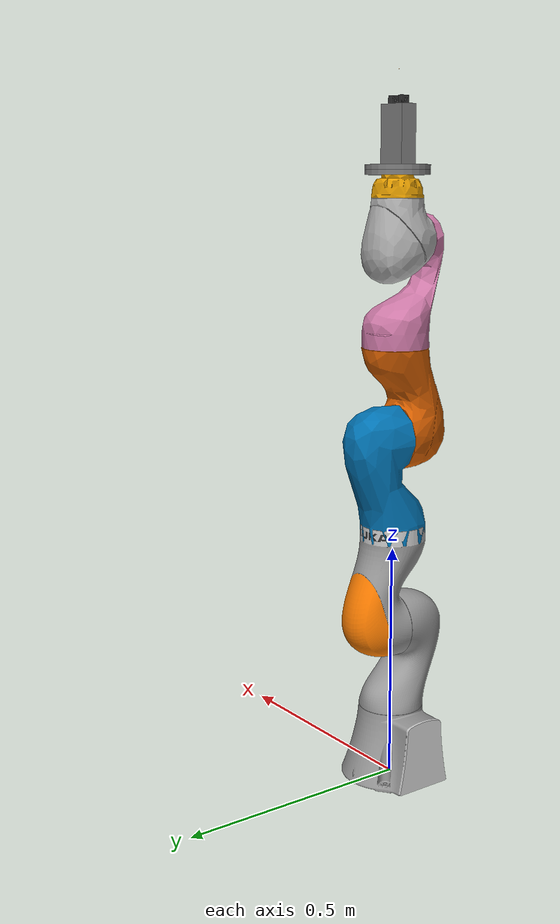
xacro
<?xml version="1.0"?>

<!-- top level -->
<robot name="iiwa7" xmlns:xacro="http://www.ros.org/wiki/xacro">
    <xacro:include filename="$(find papouch_description)/urdf/_materials.urdf.xacro" />
    <xacro:include filename="$(find papouch_description)/urdf/schunk_gripper.xacro" />

    <!-- include the lbr iiwa description -->
    <xacro:include filename="$(find lbr_description)/urdf/iiwa7/iiwa7.xacro" />

    <!-- include the definition of tools-->
    <xacro:include filename="$(find agimus_description)/urdf/flange.xacro" />
    <xacro:include filename="$(find agimus_description)/urdf/knife.xacro" />
    <xacro:include filename="$(find papouch_description)/urdf/schunk_gripper.xacro" />

    <!-- connect tools to the end-effector -->
    <xacro:tool_flange parent="$(arg robot_name)_link_ee" name="$(arg robot_name)_flange"/>
    <xacro:tool_flange parent="$(arg robot_name)_flange" name="$(arg robot_name)_flange_g"/>
    <xacro:schunk_gripper parent="$(arg robot_name)_flange_g" name="$(arg robot_name)_gripper"/>

    <!-- tcp - added 5cm finger length -->
    <link name="$(arg robot_name)_link_tool">
        <visual>
            <origin xyz="0 0 0" rpy="0 0 0"/>
            <geometry>
	            <sphere radius="0.001"/>
            </geometry>
            <material name="dummy"/>
        </visual>
    </link>

    <joint name="$(arg robot_name)_joint_tool" type="fixed">
        <parent link="$(arg robot_name)_gripper" />
        <child link="$(arg robot_name)_link_tool" />
        <origin xyz="0 0 0.05" rpy="0 0 0" />
    </joint>
</robot>

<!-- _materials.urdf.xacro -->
<robot xmlns:xacro="http://ros.org/wiki/xacro">
    <xacro:property name="papouch_materials_defined" default="false"/>
    <xacro:unless value="${papouch_materials_defined}">
        <xacro:property name="papouch_materials_defined" value="true"/>

        <material name="papouch:dummy">
            <color rgba="1.0 0.5 0.0 1"/>
        </material>

        <material name="papouch:steel">
            <color rgba="0.5 0.5 0.5 1"/>
        </material>

        <material name="papouch:black">
            <color rgba="0.2 0.2 0.2 1"/>
        </material>

        <material name="papouch:gray">
            <color rgba="0.7 0.7 0.7 1"/>
        </material>

        <material name="papouch:orange">
            <color rgba="1.0 0.3 0.0 1"/>
        </material>

        <material name="papouch:yellow">
            <color rgba="1.0 0.7 0.0 1"/>
        </material>

    </xacro:unless>
</robot>

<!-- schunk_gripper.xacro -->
<robot name="schunk_gripper" xmlns:xacro="http://ros.org/wiki/xacro">
    <xacro:include
            filename="$(find papouch_description)/urdf/_materials.urdf.xacro"/>

    <xacro:macro name="schunk_gripper" params="parent name:=gripper">

        <joint name="${name}_base_joint" type="fixed">
            <origin xyz="0 0 0" rpy="0 0 0"/>
            <parent link="${parent}"/>
            <child link="${name}_base"/>
        </joint>

        <link name="${name}_base">
            <visual>
                <origin xyz="0 0 0" rpy="0 0 0"/>
                <geometry>
                    <mesh filename="package://papouch_description/meshes/schunk_gripper_body.stl"
                          scale="0.001 0.001 0.001"/>
                </geometry>
                <material name="papouch:steel"/>
            </visual>
        </link>

        <link name="${name}_finger_p">
            <inertial>
                <origin rpy="0 0 0" xyz="0.0 0.0 0.0" />
                <mass value="0.02" />
                <inertia ixx="0.0003" ixy="0.0" ixz="0.0" iyy="0.0003" iyz="-0.00005" izz="0.00009" />
            </inertial>

            <visual>
                <origin xyz="0 0 0" rpy="0 0 0"/>
                <geometry>
                    <mesh filename="package://papouch_description/meshes/schunk_gripper_finger.stl"
                          scale="0.001 0.001 0.001"/>
                </geometry>
                <material name="papouch:black"/>
            </visual>
        </link>

        <link name="${name}_finger_m">
            <inertial>
                <origin rpy="0 0 0" xyz="0 0 0" />
                <mass value="0.02" />
                <inertia ixx="0.0003" ixy="0.0" ixz="0.0" iyy="0.0003" iyz="-0.00005" izz="0.00009" />
            </inertial>

            <visual>
                <origin xyz="0 0 0" rpy="0 0 0"/>
                <geometry>
                    <mesh filename="package://papouch_description/meshes/schunk_gripper_finger.stl"
                          scale="0.001 0.001 0.001"/>
                </geometry>
                <material name="papouch:black"/>
            </visual>
        </link>

        <joint name="${name}_joint" type="prismatic">
            <parent link="${name}_base"/>
            <child link="${name}_finger_p"/>
            <origin xyz="0 0 0.115" rpy="0 0 0"/>
            <axis xyz="1 0 0"/>
            <limit lower="0.01" upper="0.02" effort="80.0" velocity="0.05"/>
        </joint>

        <joint name="${name}_joint_mirror" type="prismatic">
            <parent link="${name}_base"/>
            <child link="${name}_finger_m"/>
            <origin xyz="0 0 0.115" rpy="0 0 3.1416"/>
            <axis xyz="1 0 0"/>
            <limit lower="0.01" upper="0.02" effort="80.0" velocity="0.05"/>
            <mimic joint="${name}_joint" multiplier="1.0" offset="0.0"/>
        </joint>

        <!--tcp -->
        <link name="${name}"/>
        <joint name="${name}_gripper" type="fixed">
            <parent link="${name}_base"/>
            <child link="${name}"/>
            <origin xyz="0 0 0.130" rpy="0 0 0"/>
        </joint>
    </xacro:macro>
</robot>

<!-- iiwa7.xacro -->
<!-- top level -->
<robot name="iiwa7" xmlns:xacro="http://www.ros.org/wiki/xacro">

    <!-- include the iiwa macro and controller -->
    <xacro:include filename="$(find lbr_description)/urdf/iiwa7/iiwa7.urdf.xacro" />
    <xacro:include filename="$(find lbr_description)/gazebo/lbr_gazebo.xacro" />
    <xacro:include filename="$(find lbr_description)/ros2_control/lbr_system_interface.xacro" />

    <!-- arguments -->
    <xacro:arg name="robot_name" default="lbr" />
    <xacro:arg name="mode" default="mock" />
    <xacro:arg
        name="joint_limits_path"
        default="$(find lbr_description)/urdf/iiwa7/joint_limits.yaml" />
    <xacro:arg
        name="system_config_path"
        default="$(find lbr_description)/ros2_control/lbr_system_config.yaml" />
    <xacro:arg
        name="initial_joint_positions_path"
        default="$(find lbr_description)/ros2_control/initial_joint_positions.yaml" />

    <!-- KDL requires a link without inertia / Gazebo requires a connection to world link or robot
    will tipple https://github.com/lbr-stack/lbr_fri_ros2_stack/issues/230 -->
    <link name="world" />

    <joint name="$(arg robot_name)_world_joint" type="fixed">
        <parent link="world" />
        <child link="$(arg robot_name)_link_0" />
    </joint>

    <!-- macros for gazebo / mock / hardware -->
    <xacro:lbr_gazebo robot_name="$(arg robot_name)" />
    <xacro:lbr_system_interface
        robot_name="$(arg robot_name)"
        mode="$(arg mode)"
        system_config_path="$(arg system_config_path)"
        initial_joint_positions_path="$(arg initial_joint_positions_path)" />

    <!-- iiwa description -->
    <xacro:iiwa7
        robot_name="$(arg robot_name)"
        joint_limits_path="$(arg joint_limits_path)" />
</robot>

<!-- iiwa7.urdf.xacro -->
<robot xmlns:xacro="http://www.ros.org/wiki/xacro">
    <!-- robot as extracted via https://github.com/syuntoku14/fusion2urdf -->
    <xacro:macro name="iiwa7"
        params="robot_name:=^|lbr joint_limits_path:=^|'$(find lbr_description)/urdf/iiwa7/joint_limits.yaml'">

        <!-- load joint limits via yaml -->
        <xacro:property name="joint_limits" value="${xacro.load_yaml(joint_limits_path)}" />

        <!-- constants -->
        <xacro:property name="PI" value="3.1415926535897931" />
        <xacro:property name="joint_damping" value="10.0" />
        <xacro:property name="joint_friction" value="0.1" />

        <!-- links and joints -->
        <link name="${robot_name}_link_0">
            <inertial>
                <origin rpy="0 0 0" xyz="-0.012857 0.0 0.069964" />
                <mass value="4.855658" />
                <inertia ixx="0.017839" ixy="0.0" ixz="0.000781" iyy="0.022294" iyz="0.0"
                    izz="0.021334" />
            </inertial>
            <visual>
                <origin rpy="0 0 0" xyz="0 0 0" />
                <geometry>
                    <mesh filename="package://lbr_description/meshes/iiwa7/visual/link_0.dae" />
                </geometry>
            </visual>
            <collision>
                <origin rpy="0 0 0" xyz="0 0 0" />
                <geometry>
                    <mesh filename="package://lbr_description/meshes/iiwa7/collision/link_0.stl" />
                </geometry>
            </collision>
        </link>

        <joint name="${robot_name}_A1" type="revolute">
            <origin rpy="0 0 0" xyz="0.0 0.0 0.1475" />
            <parent link="${robot_name}_link_0" />
            <child link="${robot_name}_link_1" />
            <axis xyz="0.0 0.0 1.0" />
            <limit
                effort="${joint_limits['A1']['effort']}"
                lower="${joint_limits['A1']['lower'] * PI / 180}"
                upper="${joint_limits['A1']['upper'] * PI / 180}"
                velocity="${joint_limits['A1']['velocity'] * PI / 180}" />
            <safety_controller
                soft_lower_limit="${joint_limits['A1']['lower'] * PI / 180}"
                soft_upper_limit="${joint_limits['A1']['upper'] * PI / 180}"
                k_position="${joint_limits['A1']['velocity'] / joint_limits['A1']['safety_position_margin']}"
                k_velocity="${joint_limits['A1']['k_velocity']}" />
            <dynamics damping="${joint_damping}" friction="${joint_friction}" />
        </joint>

        <link name="${robot_name}_link_1">
            <inertial>
                <origin rpy="0 0 0" xyz="0.0 -0.034819 0.123299" />
                <mass value="3.394011" />
                <inertia ixx="0.021383" ixy="0.0" ixz="0.0" iyy="0.020403" iyz="0.003797"
                    izz="0.007563" />
            </inertial>
            <visual>
                <origin rpy="0 0 0" xyz="0.0 0.0 -0.1475" />
                <geometry>
                    <mesh filename="package://lbr_description/meshes/iiwa7/visual/link_1.dae" />
                </geometry>
            </visual>
            <collision>
                <origin rpy="0 0 0" xyz="0.0 0.0 -0.1475" />
                <geometry>
                    <mesh filename="package://lbr_description/meshes/iiwa7/collision/link_1.stl" />
                </geometry>
            </collision>
        </link>

        <joint name="${robot_name}_A2" type="revolute">
            <origin rpy="0 0 0" xyz="0.0 -0.0105 0.1925" />
            <parent link="${robot_name}_link_1" />
            <child link="${robot_name}_link_2" />
            <axis xyz="0.0 1.0 0.0" />
            <limit
                effort="${joint_limits['A2']['effort']}"
                lower="${joint_limits['A2']['lower'] * PI / 180}"
                upper="${joint_limits['A2']['upper'] * PI / 180}"
                velocity="${joint_limits['A2']['velocity'] * PI / 180}" />
            <safety_controller
                soft_lower_limit="${joint_limits['A2']['lower'] * PI / 180}"
                soft_upper_limit="${joint_limits['A2']['upper'] * PI / 180}"
                k_position="${joint_limits['A2']['velocity'] / joint_limits['A2']['safety_position_margin']}"
                k_velocity="${joint_limits['A2']['k_velocity']}" />
            <dynamics damping="${joint_damping}" friction="${joint_friction}" />
        </joint>

        <link name="${robot_name}_link_2">
            <inertial>
                <origin rpy="0 0 0" xyz="0.0 0.039793 0.086944" />
                <mass value="4.031991" />
                <inertia ixx="0.031697" ixy="0.0" ixz="0.0" iyy="0.03008" iyz="0.005889"
                    izz="0.009666" />
            </inertial>
            <visual>
                <origin rpy="0 0 0" xyz="0.0 0.0105 -0.34" />
                <geometry>
                    <mesh filename="package://lbr_description/meshes/iiwa7/visual/link_2.dae" />
                </geometry>
            </visual>
            <collision>
                <origin rpy="0 0 0" xyz="0.0 0.0105 -0.34" />
                <geometry>
                    <mesh filename="package://lbr_description/meshes/iiwa7/collision/link_2.stl" />
                </geometry>
            </collision>
        </link>

        <joint name="${robot_name}_A3" type="revolute">
            <origin rpy="0 0 0" xyz="0.0 0.0105 0.2075" />
            <parent link="${robot_name}_link_2" />
            <child link="${robot_name}_link_3" />
            <axis xyz="0.0 0.0 1.0" />
            <limit
                effort="${joint_limits['A3']['effort']}"
                lower="${joint_limits['A3']['lower'] * PI / 180}"
                upper="${joint_limits['A3']['upper'] * PI / 180}"
                velocity="${joint_limits['A3']['velocity'] * PI / 180}" />
            <safety_controller
                soft_lower_limit="${joint_limits['A3']['lower'] * PI / 180}"
                soft_upper_limit="${joint_limits['A3']['upper'] * PI / 180}"
                k_position="${joint_limits['A3']['velocity'] / joint_limits['A3']['safety_position_margin']}"
                k_velocity="${joint_limits['A3']['k_velocity']}" />
            <dynamics damping="${joint_damping}" friction="${joint_friction}" />
        </joint>

        <link name="${robot_name}_link_3">
            <inertial>
                <origin rpy="0 0 0" xyz="0.0 0.034819 0.123299" />
                <mass value="3.394011" />
                <inertia ixx="0.021383" ixy="0.0" ixz="0.0" iyy="0.020403" iyz="-0.003797"
                    izz="0.007563" />
            </inertial>
            <visual>
                <origin rpy="0 0 0" xyz="0.0 0.0 -0.5475" />
                <geometry>
                    <mesh filename="package://lbr_description/meshes/iiwa7/visual/link_3.dae" />
                </geometry>
            </visual>
            <collision>
                <origin rpy="0 0 0" xyz="0.0 0.0 -0.5475" />
                <geometry>
                    <mesh filename="package://lbr_description/meshes/iiwa7/collision/link_3.stl" />
                </geometry>
            </collision>
        </link>

        <joint name="${robot_name}_A4" type="revolute">
            <origin rpy="0 0 0" xyz="0.0 0.0105 0.1925" />
            <parent link="${robot_name}_link_3" />
            <child link="${robot_name}_link_4" />
            <axis xyz="0.0 -1.0 0.0" />
            <limit
                effort="${joint_limits['A4']['effort']}"
                lower="${joint_limits['A4']['lower'] * PI / 180}"
                upper="${joint_limits['A4']['upper'] * PI / 180}"
                velocity="${joint_limits['A4']['velocity'] * PI / 180}" />
            <safety_controller
                soft_lower_limit="${joint_limits['A4']['lower'] * PI / 180}"
                soft_upper_limit="${joint_limits['A4']['upper'] * PI / 180}"
                k_position="${joint_limits['A4']['velocity'] / joint_limits['A4']['safety_position_margin']}"
                k_velocity="${joint_limits['A4']['k_velocity']}" />
            <dynamics damping="${joint_damping}" friction="${joint_friction}" />
        </joint>

        <link name="${robot_name}_link_4">
            <inertial>
                <origin rpy="0 0 0" xyz="0.0 -0.039793 0.086944" />
                <mass value="4.031989" />
                <inertia ixx="0.031695" ixy="0.0" ixz="0.0" iyy="0.030079" iyz="-0.005889"
                    izz="0.009665" />
            </inertial>
            <visual>
                <origin rpy="0 0 0" xyz="0.0 -0.0105 -0.74" />
                <geometry>
                    <mesh filename="package://lbr_description/meshes/iiwa7/visual/link_4.dae" />
                </geometry>
            </visual>
            <collision>
                <origin rpy="0 0 0" xyz="0.0 -0.0105 -0.74" />
                <geometry>
                    <mesh filename="package://lbr_description/meshes/iiwa7/collision/link_4.stl" />
                </geometry>
            </collision>
        </link>

        <joint name="${robot_name}_A5" type="revolute">
            <origin rpy="0 0 0" xyz="0.0 -0.0105 0.2075" />
            <parent link="${robot_name}_link_4" />
            <child link="${robot_name}_link_5" />
            <axis xyz="0.0 0.0 1.0" />
            <limit
                effort="${joint_limits['A5']['effort']}"
                lower="${joint_limits['A5']['lower'] * PI / 180}"
                upper="${joint_limits['A5']['upper'] * PI / 180}"
                velocity="${joint_limits['A5']['velocity'] * PI / 180}" />
            <safety_controller
                soft_lower_limit="${joint_limits['A5']['lower'] * PI / 180}"
                soft_upper_limit="${joint_limits['A5']['upper'] * PI / 180}"
                k_position="${joint_limits['A5']['velocity'] / joint_limits['A5']['safety_position_margin']}"
                k_velocity="${joint_limits['A5']['k_velocity']}" />
            <dynamics damping="${joint_damping}" friction="${joint_friction}" />
        </joint>

        <link name="${robot_name}_link_5">
            <inertial>
                <origin rpy="0 0 0" xyz="0.0 -0.029824 0.076267" />
                <mass value="1.529239" />
                <inertia ixx="0.008485" ixy="0.0" ixz="0.0" iyy="0.007136" iyz="0.002806"
                    izz="0.003848" />
            </inertial>
            <visual>
                <origin rpy="0 0 0" xyz="0.0 0.0 -0.9475" />
                <geometry>
                    <mesh filename="package://lbr_description/meshes/iiwa7/visual/link_5.dae" />
                </geometry>
            </visual>
            <collision>
                <origin rpy="0 0 0" xyz="0.0 0.0 -0.9475" />
                <geometry>
                    <mesh filename="package://lbr_description/meshes/iiwa7/collision/link_5.stl" />
                </geometry>
            </collision>
        </link>

        <joint name="${robot_name}_A6" type="revolute">
            <origin rpy="0 0 0" xyz="0.0 -0.0707 0.1925" />
            <parent link="${robot_name}_link_5" />
            <child link="${robot_name}_link_6" />
            <axis xyz="0.0 1.0 0.0" />
            <limit
                effort="${joint_limits['A6']['effort']}"
                lower="${joint_limits['A6']['lower'] * PI / 180}"
                upper="${joint_limits['A6']['upper'] * PI / 180}"
                velocity="${joint_limits['A6']['velocity'] * PI / 180}" />
            <safety_controller
                soft_lower_limit="${joint_limits['A6']['lower'] * PI / 180}"
                soft_upper_limit="${joint_limits['A6']['upper'] * PI / 180}"
                k_position="${joint_limits['A6']['velocity'] / joint_limits['A6']['safety_position_margin']}"
                k_velocity="${joint_limits['A6']['k_velocity']}" />
            <dynamics damping="${joint_damping}" friction="${joint_friction}" />
        </joint>

        <link name="${robot_name}_link_6">
            <inertial>
                <origin rpy="0 0 0" xyz="0.0 0.07102 0.00495" />
                <mass value="2.403626" />
                <inertia ixx="0.007067" ixy="0.0" ixz="0.0" iyy="0.006804" iyz="0.000311"
                    izz="0.004629" />
            </inertial>
            <visual>
                <origin rpy="0 0 0" xyz="0.0 0.0707 -1.14" />
                <geometry>
                    <mesh filename="package://lbr_description/meshes/iiwa7/visual/link_6.dae" />
                </geometry>
            </visual>
            <collision>
                <origin rpy="0 0 0" xyz="0.0 0.0707 -1.14" />
                <geometry>
                    <mesh filename="package://lbr_description/meshes/iiwa7/collision/link_6.stl" />
                </geometry>
            </collision>
        </link>

        <joint name="${robot_name}_A7" type="revolute">
            <origin rpy="0 0 0" xyz="0.0 0.0707 0.091" />
            <parent link="${robot_name}_link_6" />
            <child link="${robot_name}_link_7" />
            <axis xyz="0.0 0.0 1.0" />
            <limit
                effort="${joint_limits['A7']['effort']}"
                lower="${joint_limits['A7']['lower'] * PI / 180}"
                upper="${joint_limits['A7']['upper'] * PI / 180}"
                velocity="${joint_limits['A7']['velocity'] * PI / 180}" />
            <safety_controller
                soft_lower_limit="${joint_limits['A7']['lower'] * PI / 180}"
                soft_upper_limit="${joint_limits['A7']['upper'] * PI / 180}"
                k_position="${joint_limits['A7']['velocity'] / joint_limits['A7']['safety_position_margin']}"
                k_velocity="${joint_limits['A7']['k_velocity']}" />
            <dynamics damping="${joint_damping}" friction="${joint_friction}" />
        </joint>

        <link name="${robot_name}_link_7">
            <inertial>
                <origin rpy="0 0 0" xyz="3.0000e-06 -2.0000e-06 1.3782e-02" />
                <mass value="0.259474" />
                <inertia ixx="0.000171" ixy="0.0" ixz="0.0" iyy="0.000171" iyz="0.0" izz="0.000299" />
            </inertial>
            <visual>
                <origin rpy="0 0 0" xyz="0.0 0.0 -1.231" />
                <geometry>
                    <mesh filename="package://lbr_description/meshes/iiwa7/visual/link_7.dae" />
                </geometry>
            </visual>
            <collision>
                <origin rpy="0 0 0" xyz="0.0 0.0 -1.231" />
                <geometry>
                    <mesh filename="package://lbr_description/meshes/iiwa7/collision/link_7.stl" />
                </geometry>
            </collision>
        </link>

        <joint name="${robot_name}_joint_ee" type="fixed">
            <parent link="${robot_name}_link_7" />
            <child link="${robot_name}_link_ee" />
            <origin xyz="0 0 0.035" rpy="0 0 0" />
        </joint>

        <link name="${robot_name}_link_ee">
        </link>
    </xacro:macro>
</robot>

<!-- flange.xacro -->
<robot xmlns:xacro="http://www.ros.org/wiki/xacro">
  <xacro:include filename="$(find agimus_description)/urdf/_materials.urdf.xacro" />

  <xacro:macro name="tool_flange" params="parent name:=flange">

  <joint name="${name}_joint" type="fixed">
    <origin xyz="0 0 0.01" rpy="0 0 0"/>
    <parent link="${parent}"/>
    <child link="${name}" />
  </joint>

  <link name="${name}">
    <visual>
      <geometry>
        <cylinder length="0.01" radius="0.065"/>
      </geometry>
      <material name="steel"/>
      <origin xyz="0 0 -0.005" rpy="0 0 0"/>
    </visual>
  </link>
  </xacro:macro>
</robot>

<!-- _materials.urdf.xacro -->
<robot xmlns:xacro="http://ros.org/wiki/xacro">
  <xacro:property name="robot_tools_materials_defined" default="false" />
  <xacro:unless value="${robot_tools_materials_defined}">
    <xacro:property name="robot_tools_materials_defined" value="true" />

    <material name="dummy">
      <color rgba="1.0 0.5 0.0 1"/>
    </material>

    <material name="steel">
      <color rgba="0.5 0.5 0.5 1"/>
    </material>

    <material name="orange">
      <color rgba="1.0 0.3 0.0 1"/>
    </material>

    <material name="yellow">
      <color rgba="1.0 0.7 0.0 1"/>
    </material>

  </xacro:unless>
</robot>
